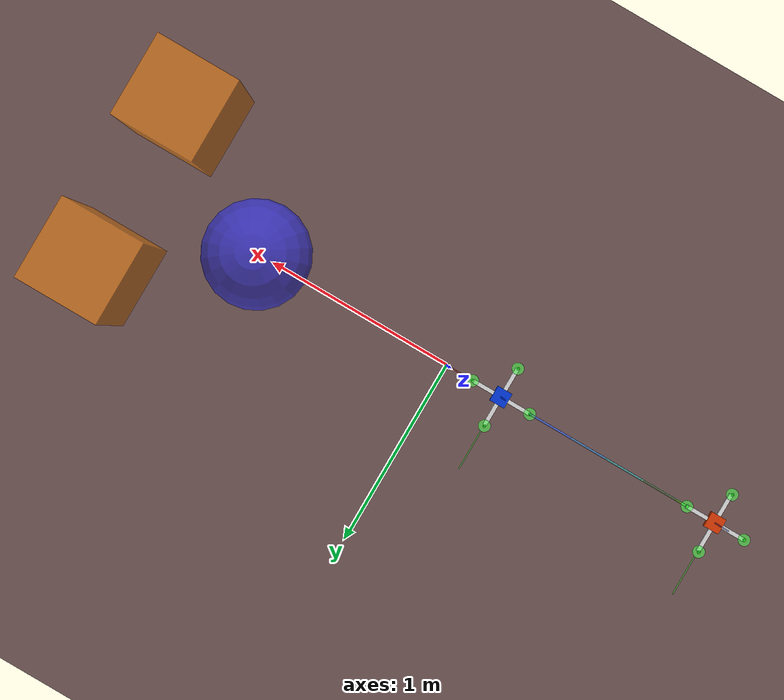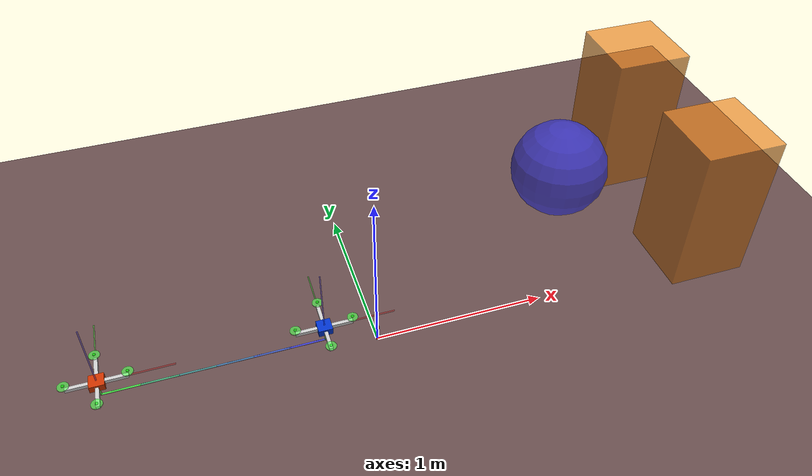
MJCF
<mujoco model="quadrotorplus">
    <compiler angle="degree" inertiafromgeom="true" coordinate="local"/>
    <option	timestep="0.01" gravity="0 0 -9.81" density="1" viscosity="1e-5" integrator="RK4"/>

    <default>
        <joint armature="1" damping="1" limited="true"/>
        <geom conaffinity="0" condim="3" density="5.0" friction="1 0.5 0.5" margin="0.01" rgba="0.8 0.6 0.4 1"/>
    </default>

    <asset>
        <texture builtin="gradient" type="skybox" height="100" width="100" rgb1="1 1 1" rgb2="0 0 0"/>
        <texture name="texgeom" builtin="flat" height="1278" mark="cross" markrgb="1 1 1" random="0.01" rgb1="0.8 0.6 0.4" rgb2="0.8 0.6 0.4" type="cube" width="127"/>
        <texture name="texplane" builtin="checker" height="100" width="100" rgb1="0 0 0" rgb2="0.8 0.8 0.8" type="2d"/>
        <material name="MatPlane" reflectance="0.5" shininess="1" specular="1" texrepeat="60 60" texture="texplane"/>
        <material name="geom" texture="texgeom" texuniform="true"/>
    </asset>

    <worldbody>
        <light cutoff="100" diffuse="1 1 1" dir="-0 0 -1.3" directional="true" exponent="1" pos="0 0 1.3" specular=".1 .1 .1"/>
        <geom conaffinity="1" condim="3" material="MatPlane" name="floor" pos="0 0 0" rgba="0.4 0.3 0.3 1" size="5 5 0.2" type="plane"/>

        <!-- Obstáculos (solo visuales) -->
        <!-- Esfera -->
        <geom name="obs_sphere_0" type="sphere" pos="1.0 0.0 1.0" size="0.25"
            rgba="0.2 0.2 0.9 0.7" contype="0" conaffinity="0"/>

        <!-- Caja derecha -->
        <geom name="obs_box_0" type="box" pos="1.6 0.4 1.0" size="0.20 0.20 0.40"
            rgba="0.9 0.5 0.1 0.7" contype="0" conaffinity="0"/>

        <!-- Caja izquierda -->
        <geom name="obs_box_1" type="box" pos="1.6 -0.4 1.0" size="0.20 0.20 0.40"
            rgba="0.9 0.5 0.1 0.7" contype="0" conaffinity="0"/>

        <!-- FIRST QUADROTOR -->
        <body name="core_1" pos="-1.5 0 0.2">
            <geom name="core_geom_1" type="box" pos="0 0 0" quat="1 0 0 0" size=".04 .04 .02" rgba=".8 .2 0 1" mass=".1"/>
            <joint name="root_1" type="free" damping="0" armature="0" pos="0 0 0" limited="false"/>

            <!-- Site en el centro del cuerpo para aplicar wrench (u1,u2,u3,u4) -->
            <site name="com_site_1" pos="0 0 0" size="0.006" rgba="1 0 0 1"/>

            <!-- brazos y motores -->
            <geom name="arm_front_1" type="box" pos=" 0.10 0 0" size="0.06 0.01 0.01" rgba="0.8 0.8 0.8 1" mass="0.02"/>
            <geom name="arm_back_1" type="box" pos="-0.10 0 0" size="0.06 0.01 0.01" rgba="0.8 0.8 0.8 1" mass="0.02"/>
            <geom name="arm_left_1" type="box" pos="0  0.10 0" size="0.01 0.06 0.01" rgba="0.8 0.8 0.8 1" mass="0.02"/>
            <geom name="arm_right_1" type="box" pos="0 -0.10 0" size="0.01 0.06 0.01" rgba="0.8 0.8 0.8 1" mass="0.02"/>

            <body name="prop0_1" pos=" 0.16  0.00 0.03">
                <geom type="cylinder" size="0.03 0.003" rgba="0.3 1 0.3 0.6"/>
                <site name="motor0_1" pos="0 0 0.003" size="0.008" rgba="0 1 0 0.7" type="cylinder"/>
            </body>
            <body name="prop1_1" pos="-0.16  0.00 0.03">
                <geom type="cylinder" size="0.03 0.003" rgba="0.3 1 0.3 0.6"/>
                <site name="motor1_1" pos="0 0 0.003" size="0.008" rgba="0 1 0 0.7" type="cylinder"/>
            </body>
            <body name="prop2_1" pos=" 0.00  0.16 0.03">
                <geom type="cylinder" size="0.03 0.003" rgba="0.3 1 0.3 0.6"/>
                <site name="motor2_1" pos="0 0 0.003" size="0.008" rgba="0 1 0 0.7" type="cylinder"/>
            </body>
            <body name="prop3_1" pos=" 0.00 -0.16 0.03">
                <geom type="cylinder" size="0.03 0.003" rgba="0.3 1 0.3 0.6"/>
                <site name="motor3_1" pos="0 0 0.003" size="0.008" rgba="0 1 0 0.7" type="cylinder"/>
            </body>

            <site name="x_axis_1" type="box" pos="0.20 0 0" size="0.20 0.003 0.003" rgba="1 0 0 0.3"/>
            <site name="y_axis_1" type="box" pos="0 0.20 0" size="0.003 0.20 0.003" rgba="0 1 0 0.3"/>
            <site name="z_axis_1" type="box" pos="0 0 0.20" size="0.003 0.003 0.20" rgba="0 0 1 0.3"/>

            <site name="attach_left" pos="0 0 -0.03"/>
        </body>

        <!-- SECOND QUADROTOR -->
        <body name="core_2" pos="-0.3 0 0.2">
            <geom name="core_geom_2" type="box" pos="0 0 0" quat="1 0 0 0" size=".04 .04 .02" rgba="0 0.2 0.8 1" mass=".1"/>
            <joint name="root_2" type="free" damping="0" armature="0" pos="0 0 0" limited="false"/>

            <!-- Site en el centro del cuerpo para aplicar wrench (u1,u2,u3,u4) -->
            <site name="com_site_2" pos="0 0 0" size="0.006" rgba="1 0 0 1"/>

            <!-- brazos y motores -->
            <geom name="arm_front_2" type="box" pos=" 0.10 0 0" size="0.06 0.01 0.01" rgba="0.8 0.8 0.8 1" mass="0.02"/>
            <geom name="arm_back_2" type="box" pos="-0.10 0 0" size="0.06 0.01 0.01" rgba="0.8 0.8 0.8 1" mass="0.02"/>
            <geom name="arm_left_2" type="box" pos="0  0.10 0" size="0.01 0.06 0.01" rgba="0.8 0.8 0.8 1" mass="0.02"/>
            <geom name="arm_right_2" type="box" pos="0 -0.10 0" size="0.01 0.06 0.01" rgba="0.8 0.8 0.8 1" mass="0.02"/>

            <body name="prop0_2" pos=" 0.16  0.00 0.03">
                <geom type="cylinder" size="0.03 0.003" rgba="0.3 1 0.3 0.6"/>
                <site name="motor0_2" pos="0 0 0.003" size="0.008" rgba="0 1 0 0.7" type="cylinder"/>
            </body>
            <body name="prop1_2" pos="-0.16  0.00 0.03">
                <geom type="cylinder" size="0.03 0.003" rgba="0.3 1 0.3 0.6"/>
                <site name="motor1_2" pos="0 0 0.003" size="0.008" rgba="0 1 0 0.7" type="cylinder"/>
            </body>
            <body name="prop2_2" pos=" 0.00  0.16 0.03">
                <geom type="cylinder" size="0.03 0.003" rgba="0.3 1 0.3 0.6"/>
                <site name="motor2_2" pos="0 0 0.003" size="0.008" rgba="0 1 0 0.7" type="cylinder"/>
            </body>
            <body name="prop3_2" pos=" 0.00 -0.16 0.03">
                <geom type="cylinder" size="0.03 0.003" rgba="0.3 1 0.3 0.6"/>
                <site name="motor3_2" pos="0 0 0.003" size="0.008" rgba="0 1 0 0.7" type="cylinder"/>
            </body>

            <site name="x_axis_2" type="box" pos="0.20 0 0" size="0.20 0.003 0.003" rgba="1 0 0 0.3"/>
            <site name="y_axis_2" type="box" pos="0 0.20 0" size="0.003 0.20 0.003" rgba="0 1 0 0.3"/>
            <site name="z_axis_2" type="box" pos="0 0 0.20" size="0.003 0.003 0.20" rgba="0 0 1 0.3"/>

            <site name="attach_right" pos="0 0 -0.03"/>
        </body>
        <!-- 🔗 Barra flexible con 6 segmentos articulados -->
        <body name="bar_seg1" pos="-1.500 0 0.1">
            <joint name="bar_free" type="free" damping="0.050" stiffness="0.100"/>
            <geom type="capsule" fromto="0 0 0 0.200 0 0" size="0.005" rgba="0.3 0.9 0.3 1" mass="0.017"/>
            <site name="bar_left" pos="0 0 0"/>
            <body name="bar_seg2" pos="0.200 0 0">
                <joint type="hinge" axis="0 1 1" range="-180 180" damping="0.0005" stiffness="0.1" armature="0" limited="false"/>
                <geom type="capsule" fromto="0 0 0 0.200 0 0" size="0.005" rgba="0.3 0.70 0.50 1" mass="0.017"/>
            <body name="bar_seg3" pos="0.200 0 0">
                <joint type="hinge" axis="0 1 1" range="-180 180" damping="0.0005" stiffness="0.1" armature="0" limited="false"/>
                <geom type="capsule" fromto="0 0 0 0.200 0 0" size="0.005" rgba="0.3 0.60 0.60 1" mass="0.017"/>
            <body name="bar_seg4" pos="0.200 0 0">
                <joint type="hinge" axis="0 1 1" range="-180 180" damping="0.0005" stiffness="0.1" armature="0" limited="false"/>
                <geom type="capsule" fromto="0 0 0 0.200 0 0" size="0.005" rgba="0.3 0.50 0.70 1" mass="0.017"/>
            <body name="bar_seg5" pos="0.200 0 0">
                <joint type="hinge" axis="0 1 1" range="-180 180" damping="0.0005" stiffness="0.1" armature="0" limited="false"/>
                <geom type="capsule" fromto="0 0 0 0.200 0 0" size="0.005" rgba="0.3 0.40 0.80 1" mass="0.017"/>
            <body name="bar_seg6" pos="0.200 0 0">
                <joint type="hinge" axis="0 1 1" range="-180 180" damping="0.0005" stiffness="0.1" armature="0" limited="false"/>
                <geom type="capsule" fromto="0 0 0 0.200 0 0" size="0.005" rgba="0.3 0.30 0.90 1" mass="0.017"/>
                <site name="bar_right" pos="0.200 0 0"/>
            </body>
            </body>
            </body>
            </body>
            </body>
        </body>

        <!-- Flecha visual 1 (mocap) para mostrar F_des1 -->
        <body name="force_arrow_1" mocap="true" pos="0 0 0">
        <geom name="force_geom_1"
                type="capsule"
                size="0.01 0.10"
                rgba="1 0 0 1"
                contype="0"
                conaffinity="0"
                mass="0"/>
        </body>

        <!-- Flecha visual 2 (mocap) para mostrar F_des2 -->
        <body name="force_arrow_2" mocap="true" pos="0 0 0">
        <geom name="force_geom_2"
                type="capsule"
                size="0.01 0.10"
                rgba="1 0 0 1"
                contype="0"
                conaffinity="0"
                mass="0"/>
        </body>
    </worldbody>

    <!-- 🌈 Tendones elásticos que unen drones y barra -->
    <tendon>
        <spatial name="tendon_left"
                 limited="true" range="0.01 0.03"
                 springlength="0.1" stiffness="20" damping="3"
                 rgba="0.2 1 0.2 0.5" width="0.005">
            <site site="attach_left"/>
            <site site="bar_left"/>
        </spatial>

        <spatial name="tendon_right"
                 limited="true" range="0.01 0.03"
                 springlength="0.25" stiffness="20" damping="3"
                 rgba="0.2 1 0.2 0.5" width="0.005">
            <site site="attach_right"/>
            <site site="bar_right"/>
        </spatial>
    </tendon>

    <actuator>
        <!-- DRON 1: u1,u2,u3,u4 -->
        <general name="u1_thrust_1" site="com_site_1"
              ctrllimited="true" ctrlrange="0 10"
              gear="0 0 1  0 0 0"/>

        <general name="u2_tau_x_1" site="com_site_1"
                ctrllimited="true" ctrlrange="-1 1"
                gear="0 0 0  1 0 0"/>

        <general name="u3_tau_y_1" site="com_site_1"
                ctrllimited="true" ctrlrange="-1 1"
                gear="0 0 0  0 1 0"/>

        <general name="u4_tau_z_1" site="com_site_1"
                ctrllimited="true" ctrlrange="-0.2 0.2"
                gear="0 0 0  0 0 1"/>

        <!-- DRON 2: u1,u2,u3,u4 -->
        <general name="u1_thrust_2" site="com_site_2"
                ctrllimited="true" ctrlrange="0 10"
                gear="0 0 1  0 0 0"/>

        <general name="u2_tau_x_2" site="com_site_2"
                ctrllimited="true" ctrlrange="-1 1"
                gear="0 0 0  1 0 0"/>

        <general name="u3_tau_y_2" site="com_site_2"
                ctrllimited="true" ctrlrange="-1 1"
                gear="0 0 0  0 1 0"/>

        <general name="u4_tau_z_2" site="com_site_2"
                ctrllimited="true" ctrlrange="-0.2 0.2"
                gear="0 0 0  0 0 1"/>
    </actuator>

    <sensor>
        <!-- Primer dron -->
        <framepos  name="pos_core_1"  objtype="body" objname="core_1"/>
        <framequat name="quat_core_1" objtype="body" objname="core_1"/>

        <!-- Segundo dron -->
        <framepos  name="pos_core_2"  objtype="body" objname="core_2"/>
        <framequat name="quat_core_2" objtype="body" objname="core_2"/>
    </sensor>

</mujoco>
